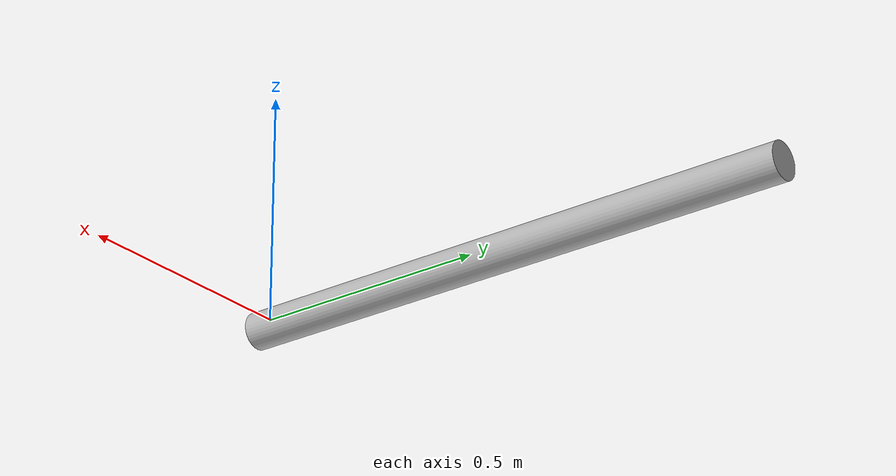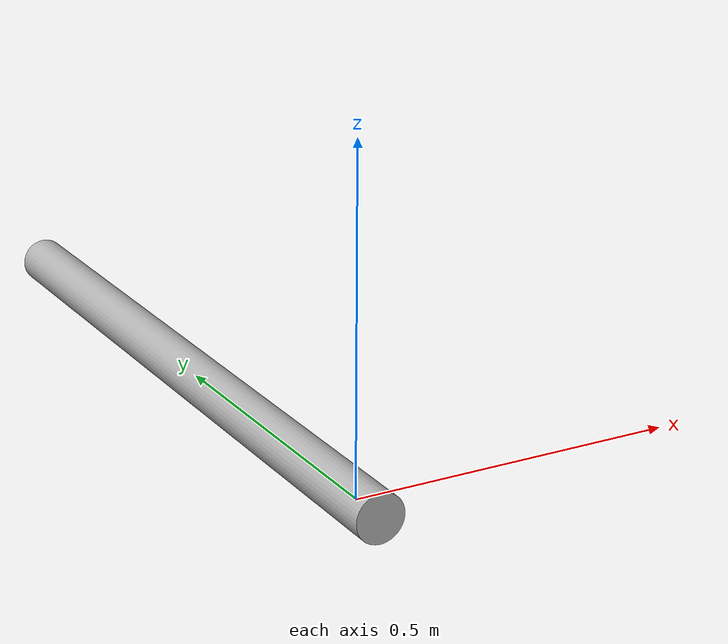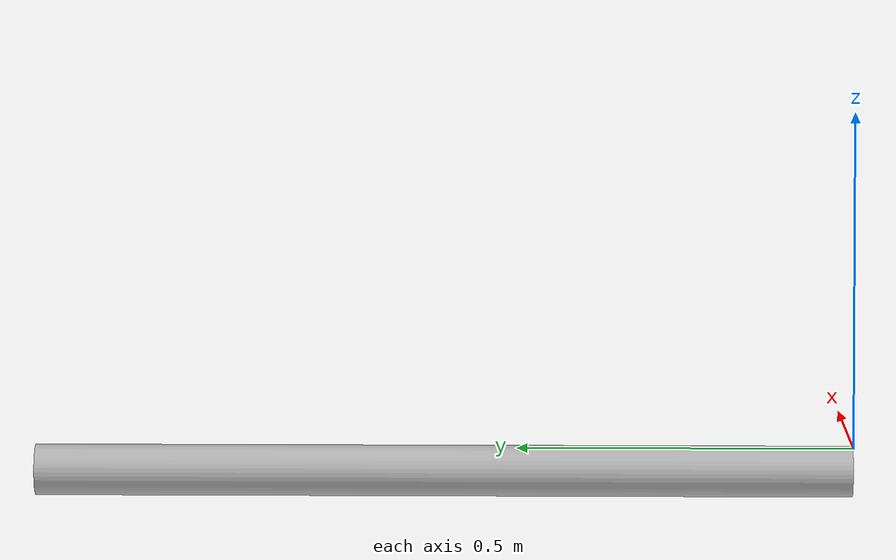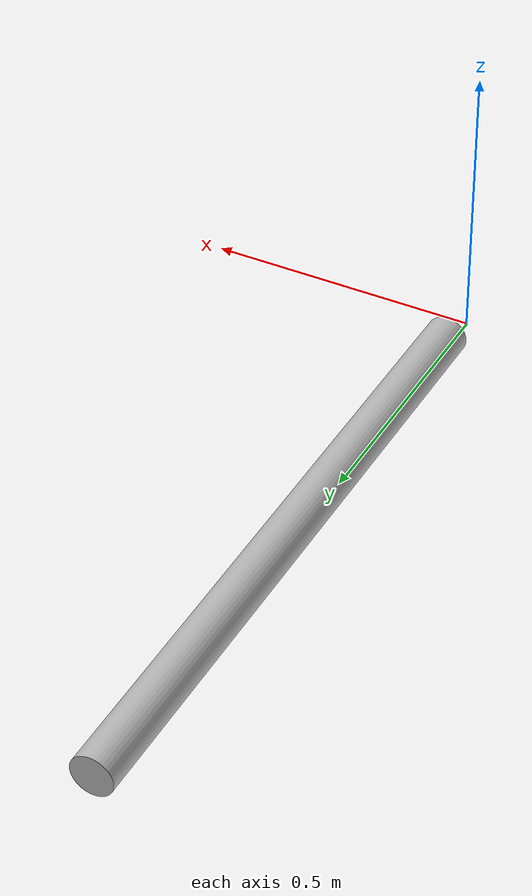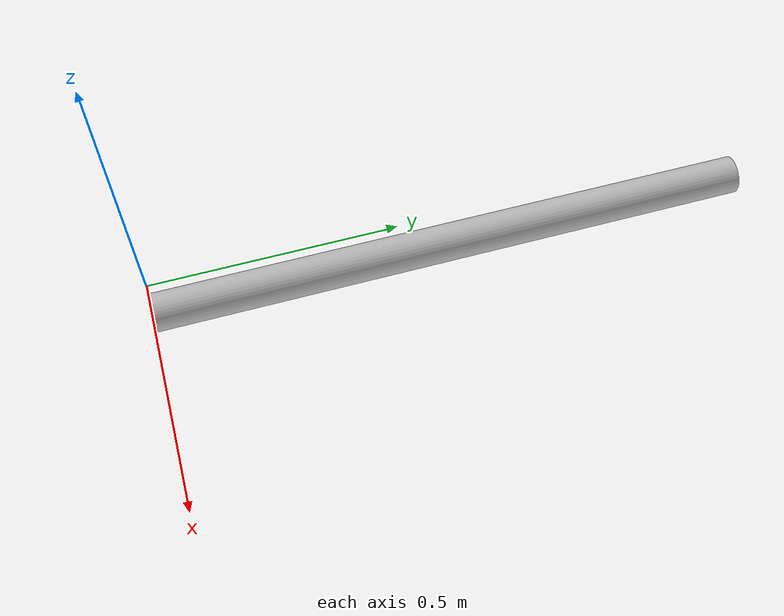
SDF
<?xml version='1.0'?>
<sdf version="1.6">
  <model name="pylon">
      <pose> 0 0 0 0 1.5707963267 0 </pose>
      <static>true</static>
      <link name="body">
        <collision name = 'collision'>
          <geometry>
            <mesh>
              <uri>model://pylon/pylon.STL</uri>
              <scale> 0.0005 0.0005 0.0005</scale>
            </mesh>
          </geometry>
        </collision>
        <visual name="visual">
          <geometry>
            <mesh>
              <uri>model://pylon/pylon.STL</uri>
              <scale> 0.0005 0.0005 0.0005</scale>
            </mesh>
          </geometry>
        </visual>
      </link>
  </model>
</sdf>
